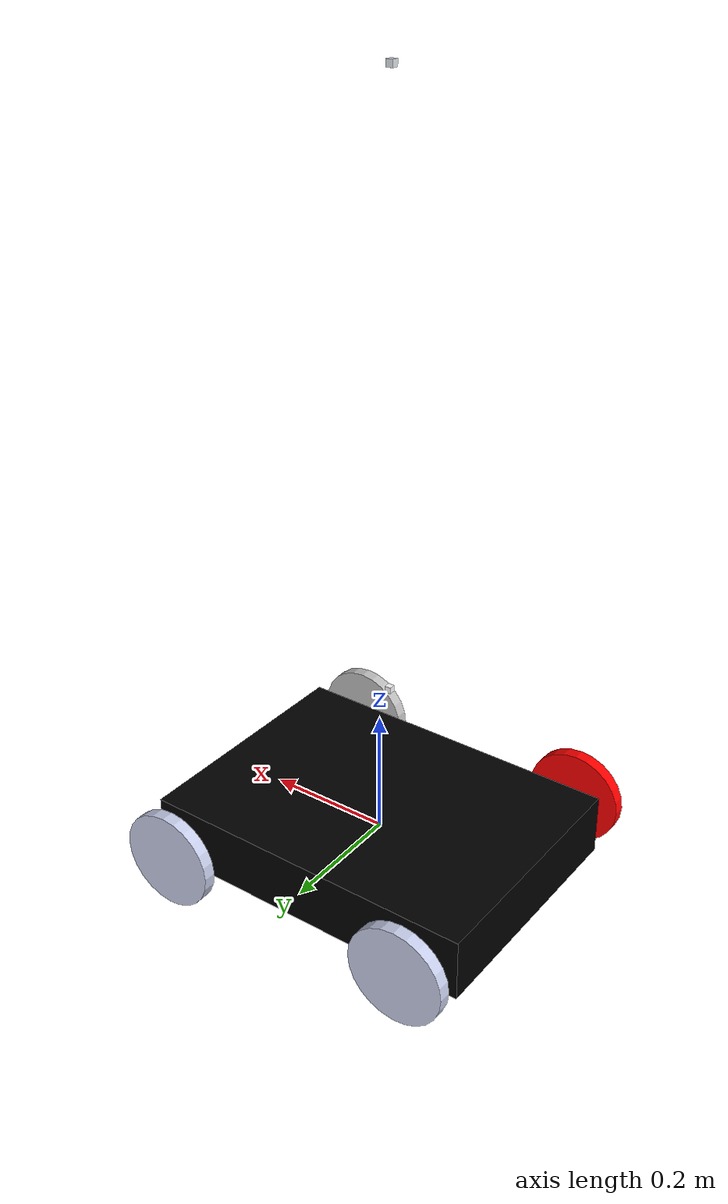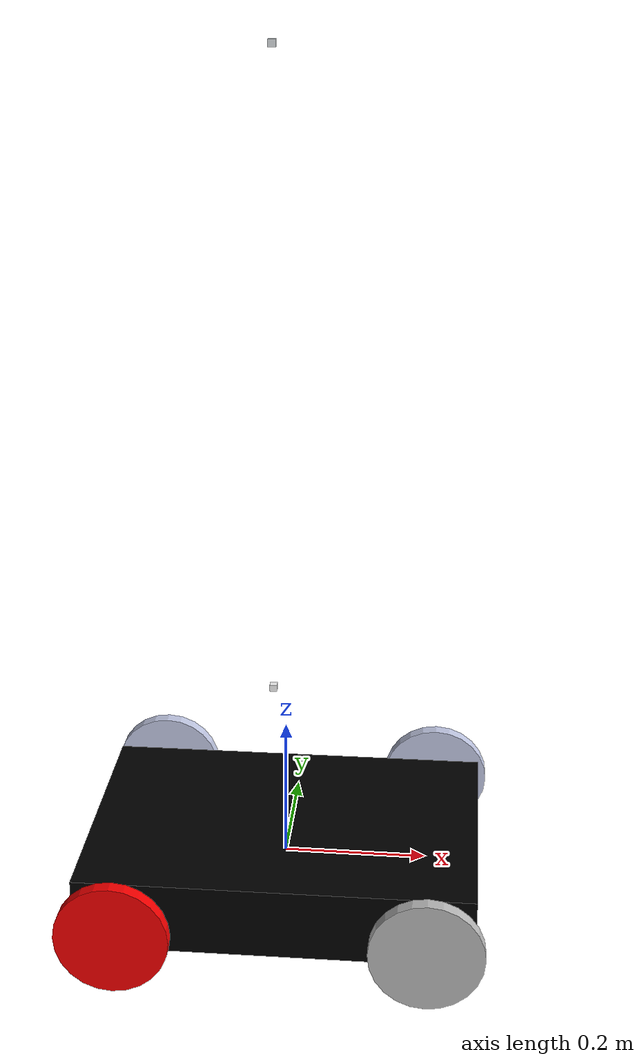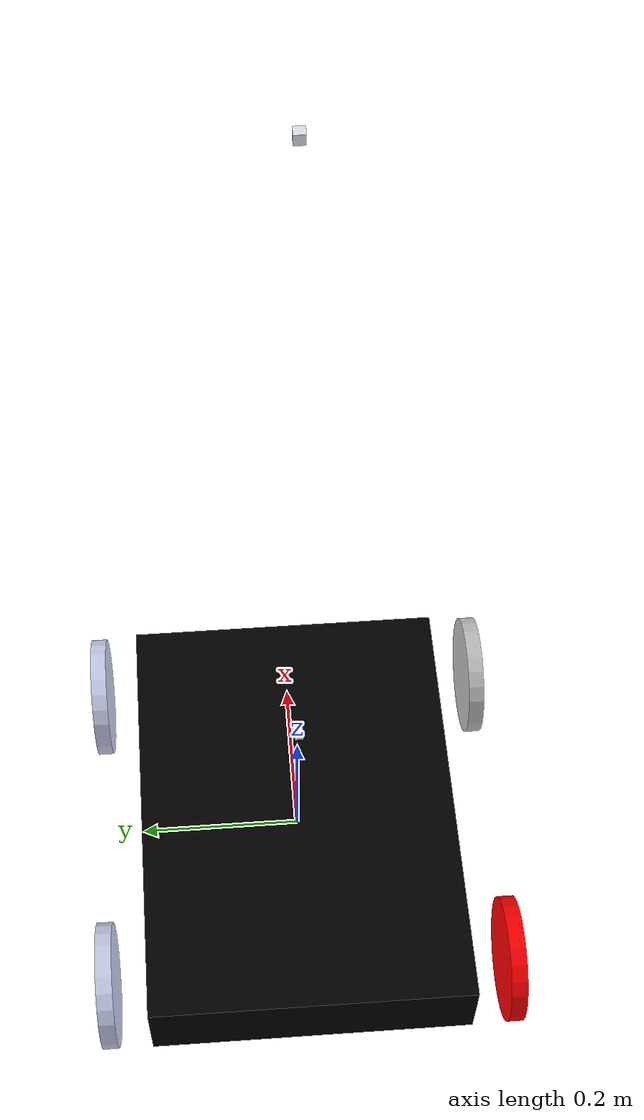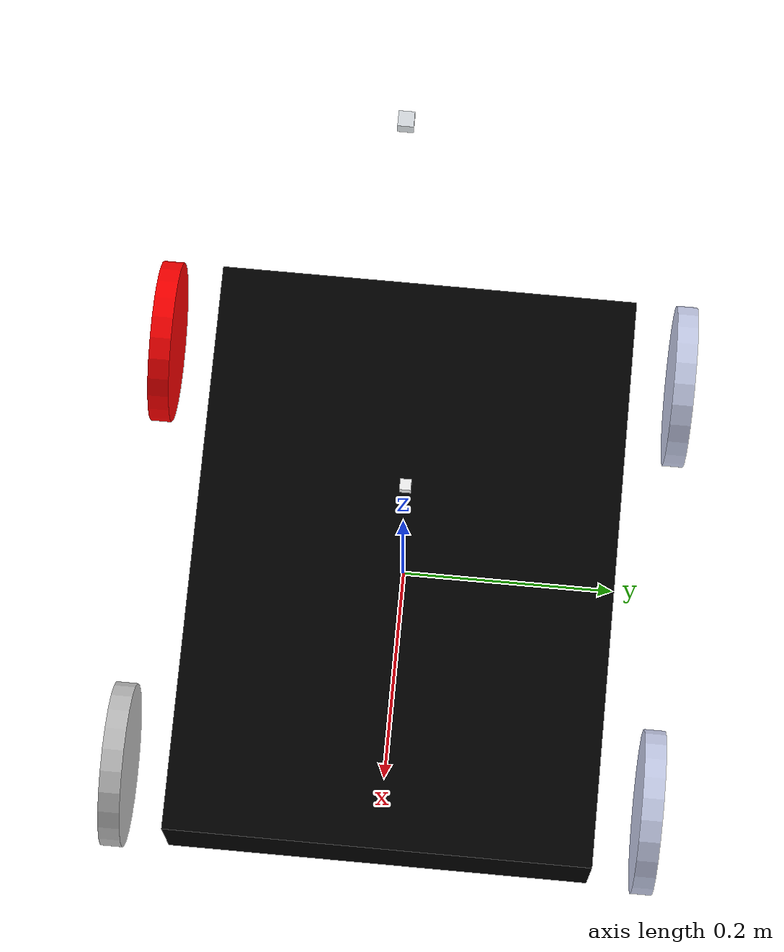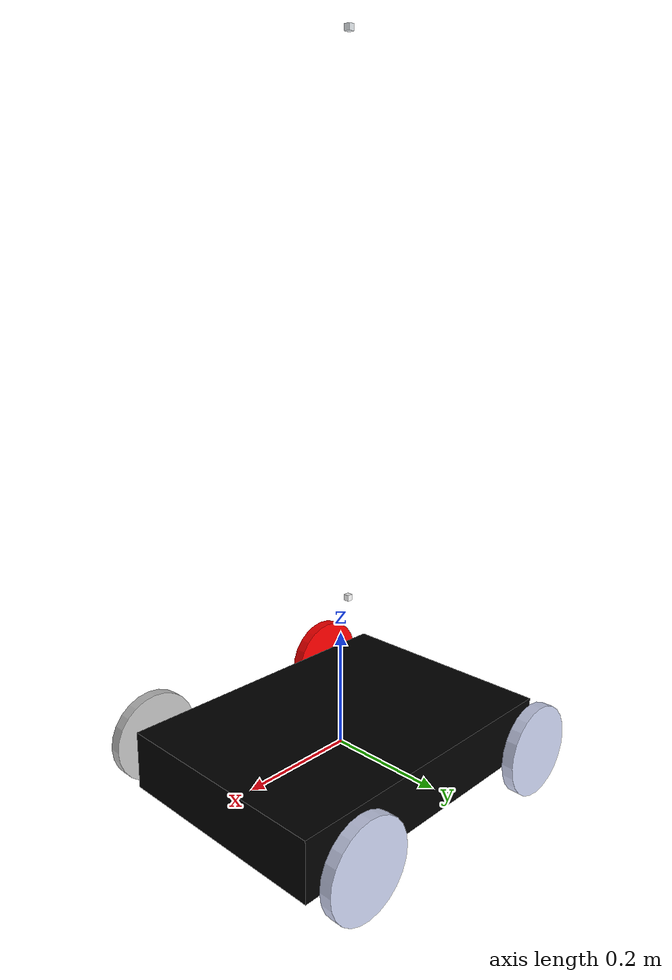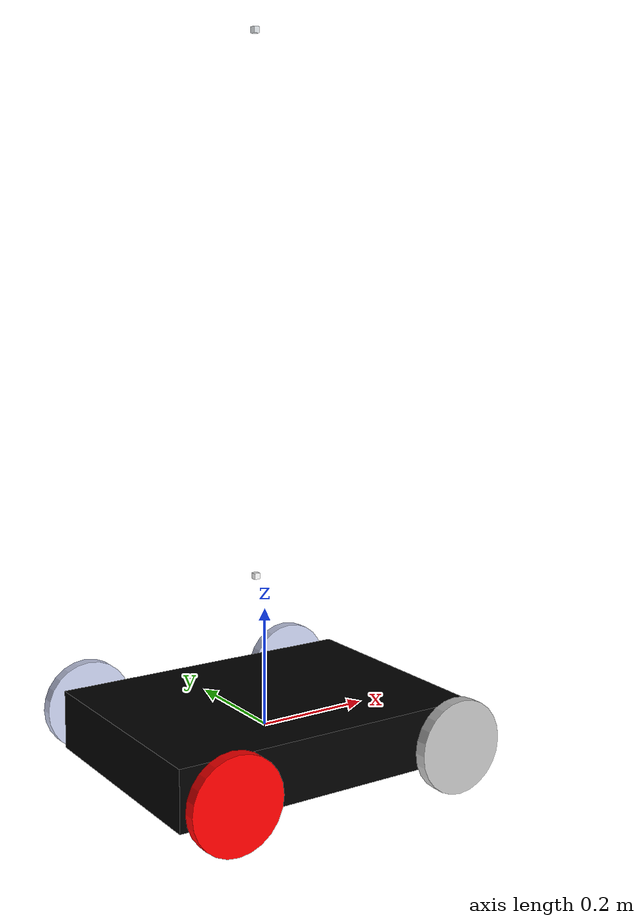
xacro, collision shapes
<?xml version="1.0"?>

<robot xmlns:xacro="http://www.ros.org/wiki/xacro" name="roborts_robot_xacro">

        <xacro:include filename="$(find roborts_gazebo)/robots/infantry.urdf.xacro" />
        <xacro:include filename="$(find roborts_gazebo)/robots/infantry.gazebo.xacro" />

</robot>

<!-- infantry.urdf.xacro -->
<robot xmlns:xacro="http://www.ros.org/wiki/xacro" 	name="infantry_xacro">

<xacro:property name="wheel_axe_width" value="0.25" />
<xacro:property name="wheel_axe_length" value="0.21" />
<xacro:property name="wheel_radius" value="0.078" />
<xacro:property name="wheel_width" value="0.02" />

  <link
    name="base_link">
    <inertial>
    <origin
    xyz="0 0 0"
    rpy="0 0 0" />
    <mass
    value="25.625" />
    <inertia
    ixx="0.10311"
    ixy="-9.0391E-05"
    ixz="0.0071078"
    iyy="0.24575"
    iyz="2.1083E-05"
    izz="0.32438" />
    </inertial>
    <collision>
    <origin
    xyz="0 0 0"
    rpy="0 0 0" />
    <geometry>
    <box
    size= "0.55 0.4 0.1"
    />
    </geometry>
    </collision>
    <visual>
      <origin
        xyz="0 0 0"
        rpy="0 0 0" />
      <geometry>
        <mesh
          filename="package://roborts_gazebo/meshes/base_link.STL" />
      </geometry>
      <material
        name="">
        <color
          rgba="0 0 0 1" />
      </material>
    </visual>
  </link>

          <!--name="base_footprint">-->
              <!--xyz="-0.025782 0 0.025311"-->
              <!--ixx="0.10311"-->
              <!--ixy="-9.0391E-05"-->
              <!--ixz="0.0071078"-->
              <!--iyy="0.24575"-->
              <!--iyz="2.1083E-05"-->
              <!--xyz="0 0 0"-->
                <!--size= "0.55 0.4 0.1"-->

          <!--name="base_link_to_base_foot_print"-->
          <!--type="fixed">-->
            <!--xyz="0 0 0"-->

  <link
    name="br_wheel_link">
    <inertial>
      <origin
        xyz="0 0.014616 0"
        rpy="0 0 0" />
      <mass
        value="0.86078" />
      <inertia
        ixx="0.0015361"
        ixy="1.6456E-06"
        ixz="-2.0131E-06"
        iyy="0.002844"
        iyz="-9.5351E-07"
        izz="0.0015337" />
    </inertial>
    <visual>
      <origin
        xyz="0 0 0"
        rpy="0 0 0" />
      <geometry>
        <mesh
          filename="package://roborts_gazebo/meshes/br_wheel_link.STL" />
      </geometry>
      <material
        name="">
        <color
          rgba="1 0 0 1" />
      </material>
    </visual>
    <collision>
      <origin
        xyz="0 0 0"
        rpy="1.5708 0 0" />
      <geometry>
        <cylinder
          radius = "${wheel_radius}"
          length = "${wheel_width}" />
      </geometry>
      <surface>
        <friction>
          <ode>
            <mu>0.0</mu>
            <mu2>0.0</mu2>
          </ode>
        </friction>
      </surface>
    </collision>
  </link>
  <joint
    name="base_link_to_br_wheel_joint"
    type="continuous">
    <origin
      xyz="-${wheel_axe_length} -${wheel_axe_width} 0"
      rpy="0 0 -3.1416" />
    <parent
      link="base_link" />
    <child
      link="br_wheel_link" />
    <axis
      xyz="0 1 0" />
  </joint>

  <link
    name="bl_wheel_link">
    <inertial>
      <origin
        xyz="0 -0.014551 0"
        rpy="0 0 0" />
      <mass
        value="0.86078" />
      <inertia
        ixx="0.0015355"
        ixy="4.8831E-07"
        ixz="1.8067E-06"
        iyy="0.002844"
        iyz="9.4618E-08"
        izz="0.0015338" />
    </inertial>
    <visual>
      <origin
        xyz="0 0 0"
        rpy="0 0 0" />
      <geometry>
        <mesh
          filename="package://roborts_gazebo/meshes/bl_wheel_link.STL" />
      </geometry>
      <material
        name="">
        <color
          rgba="0.79216 0.81961 0.93333 1" />
      </material>
    </visual>
    <collision>
      <origin
        xyz="0 0 0"
        rpy="-1.5708 0 0" />
      <geometry>
        <cylinder
          radius = "${wheel_radius}"
          length = "${wheel_width}" />
      </geometry>
      <surface>
        <friction>
          <ode>
            <mu>0.0</mu>
            <mu2>0.0</mu2>
          </ode>
        </friction>
      </surface>
    </collision>
  </link>
  <joint
    name="base_link_to_bl_wheel_joint"
    type="continuous">
    <origin
      xyz="-${wheel_axe_length} ${wheel_axe_width} 0"
      rpy="0 0 -3.1416" />
    <parent
      link="base_link" />
    <child
      link="bl_wheel_link" />
    <axis
      xyz="0 -1 0" />
  </joint>
  <link
    name="fl_wheel_link">
    <inertial>
      <origin
        xyz="0 -0.014549 0"
        rpy="0 0 0" />
      <mass
        value="0.86078" />
      <inertia
        ixx="0.0015361"
        ixy="1.6481E-06"
        ixz="-2.0131E-06"
        iyy="0.002844"
        iyz="-9.4912E-07"
        izz="0.0015338" />
    </inertial>
    <visual>
      <origin
        xyz="0 0 0"
        rpy="0 0 0" />
      <geometry>
        <mesh
          filename="package://roborts_gazebo/meshes/fl_wheel_link.STL" />
      </geometry>
      <material
        name="">
        <color
          rgba="0.79216 0.81961 0.93333 1" />
      </material>
    </visual>
    <collision>
       <origin
        xyz="0 0 0"
        rpy="-1.5708 0 0" />
      <geometry>
        <cylinder
          radius = "${wheel_radius}"
          length = "${wheel_width}" />
      </geometry>
      <surface>
        <friction>
          <ode>
            <mu>0.0</mu>
            <mu2>0.0</mu2>
          </ode>
        </friction>
      </surface>
    </collision>
  </link>
  <joint
    name="base_link_to_fl_wheel_joint"
    type="continuous">
    <origin
      xyz="${wheel_axe_length} ${wheel_axe_width} 0"
      rpy="0 0 3.1416" />
    <parent
      link="base_link" />
    <child
      link="fl_wheel_link" />
    <axis
      xyz="0 1 0" />
  </joint>
  <link
    name="fr_wheel_link">
    <inertial>
      <origin
        xyz="0.00010086 0.014592 0"
        rpy="0 0 0" />
      <mass
        value="0.86078" />
      <inertia
        ixx="0.0015355"
        ixy="5.3543E-07"
        ixz="1.8067E-06"
        iyy="0.002844"
        iyz="1.1717E-07"
        izz="0.0015337" />
    </inertial>
    <visual>
      <origin
        xyz="0 0 0"
        rpy="0 0 0" />
      <geometry>
        <mesh
          filename="package://roborts_gazebo/meshes/fr_wheel_link.STL" />
      </geometry>
      <material
        name="">
        <color
          rgba="0.75294 0.75294 0.75294 1" />
      </material>
    </visual>
    <collision>
      <origin
        xyz="0 0 0"
        rpy="1.5708 0 0" />
      <geometry>
        <cylinder
          radius = "${wheel_radius}"
          length = "${wheel_width}" />
      </geometry>
      <surface>
        <friction>
          <ode>
            <mu>0.0</mu>
            <mu2>0.0</mu2>
          </ode>
        </friction>
      </surface>
    </collision>
  </link>
  <joint
    name="base_link_to_fr_wheel_joint"
    type="continuous">
    <origin
      xyz="${wheel_axe_length} -${wheel_axe_width} 0"
      rpy="0 0 -3.1416" />
    <parent
      link="base_link" />
    <child
      link="fr_wheel_link" />
    <axis
      xyz="0 -1 0" />
  </joint>
  <link
    name="yaw_link">
    <inertial>
      <origin
        xyz="0 0.024936 0"
        rpy="0 0 0" />
      <mass
        value="0.98307" />
      <inertia
        ixx="0.0072228"
        ixy="1.8624E-07"
        ixz="5.1373E-07"
        iyy="0.0035103"
        iyz="-0.0016193"
        izz="0.00443" />
    </inertial>
    <visual>
      <origin
        xyz="0 0 0"
        rpy="0 0 0" />
      <geometry>
        <mesh
          filename="package://roborts_gazebo/meshes/yaw_link.STL" />
      </geometry>
      <material
        name="">
        <color
          rgba="0.89412 0.91373 0.92941 1" />
      </material>
    </visual>
    <collision>
      <origin
        xyz="0 0 1"
        rpy="0 0 0" />
      <geometry>
        <box
          size= "0.01 0.01 0.01"
        />
      </geometry>
    </collision>
  </link>
  <joint
    name="base_link_to_yaw_joint"
    type="fixed">
    <origin
      xyz="-0.017561 0 0.1342"
      rpy="0 0 0" />
    <parent
      link="base_link" />
    <child
      link="yaw_link" />
    <axis
      xyz="0 0 1" />
      <!--lower="-1.57"-->
      <!--upper="1.57"-->
      <!--effort="1000"-->
  </joint>
  <link
    name="pitch_link">
    <inertial>
      <origin
        xyz="-0.0024244 0.00051587 -0.011372"
        rpy="0 0 0" />
      <mass
        value="0.68228" />
      <inertia
        ixx="0.0019856"
        ixy="5.1373E-05"
        ixz="0.00087772"
        iyy="0.0042744"
        iyz="-2.4468E-05"
        izz="0.0037072" />
    </inertial>
    <visual>
      <origin
        xyz="0 0 0"
        rpy="0 0 0" />
      <geometry>
        <mesh
          filename="package://roborts_gazebo/meshes/pitch_link.STL" />
      </geometry>
      <material
        name="">
        <color
          rgba="1 1 1 1" />
      </material>
    </visual>
    <collision>
      <origin
        xyz="0 0 0"
        rpy="0 0 0" />
      <geometry>
        <box
          size= "0.01 0.01 0.01" />
      </geometry>
    </collision>
  </link>
  <joint
    name="yaw_to_pitch_joint"
    type="revolute">
    <origin
      xyz="0 0 0.125"
      rpy="0 0 0" />
    <parent
      link="yaw_link" />
    <child
      link="pitch_link" />
    <axis
      xyz="0 1 0" />
    <limit
      lower="-0.35"
      upper="0.35"
      effort="1000"
      velocity="100" />
  </joint>

  <link
    name="base_laser_link">
    <inertial>
      <origin
        xyz="0 0 0"
        rpy="0 0 0" />
      <mass
        value="0.12185" />
      <inertia
        ixx="6.3159E-05"
        ixy="-9.0976E-22"
        ixz="-4.4573E-07"
        iyy="6.3776E-05"
        iyz="-1.8492E-21"
        izz="4.2072E-05" />
    </inertial>
  </link>
  <joint
    name="base_link_to_laser_joint"
    type="fixed">
    <origin
      xyz="0 0 0.1"
      rpy="0 0 0" />
    <parent
      link="base_link" />
    <child
      link="base_laser_link" />
    <axis
      xyz="0 0 0" />
  </joint>

  <link
    name="uwb_tag_link">
    <inertial>
      <origin
        xyz="0 0 0"
        rpy="0 0 0" />
      <mass
        value="0.02" />
      <inertia
        ixx="6.3159E-05"
        ixy="-9.0976E-22"
        ixz="-4.4573E-07"
        iyy="6.3776E-05"
        iyz="-1.8492E-21"
        izz="4.2072E-05" />
    </inertial>
  </link>
  <joint
    name="base_link_to_uwb_tag_link_joint"
    type="fixed">
    <origin
      xyz="-0.18 0.1 0.38"
      rpy="0 0 0" />
    <parent
      link="base_link" />
    <child
      link="uwb_tag_link" />
    <axis
      xyz="0 0 0" />
  </joint>

    <link
    name="imu">
    <inertial>
      <origin
        xyz="0 0 0"
        rpy="0 0 0" />
      <mass
        value="0.0001" />
      <inertia
        ixx="6.3159E-25"
        ixy="-9.0976E-22"
        ixz="-4.4573E-27"
        iyy="6.3776E-25"
        iyz="-1.8492E-21"
        izz="4.2072E-25" />
    </inertial>
    <visual>
      <origin
        xyz="0 0 0"
        rpy="0 0 0" />
      <geometry>
        <box
          size= "0.0001 0.0001 0.0001"
        />
      </geometry>
      <material
        name="">
        <color
          rgba="0.75294 0.75294 0.75294 1" />
      </material>
    </visual>
  </link>
  <joint
    name="uwb_tag_link_to_imu_link_joint"
    type="fixed">
    <origin
      xyz="0 0 0"
      rpy="0 0 0" />
    <parent
      link="uwb_tag_link" />
    <child
      link="imu" />
    <axis
      xyz="0 0 0" />
  </joint>

</robot>
